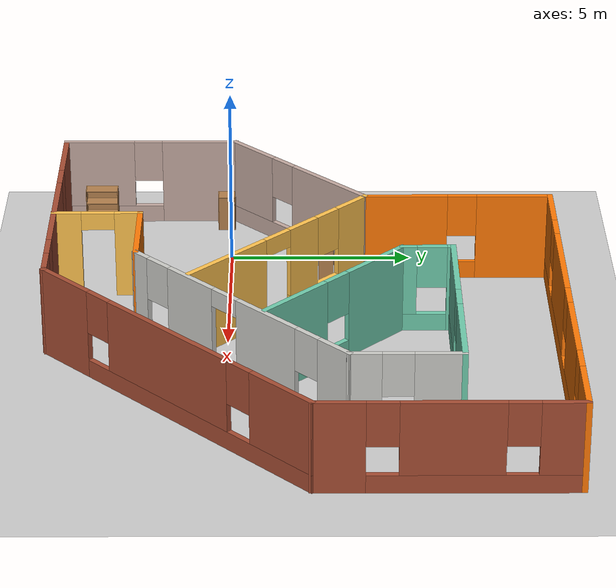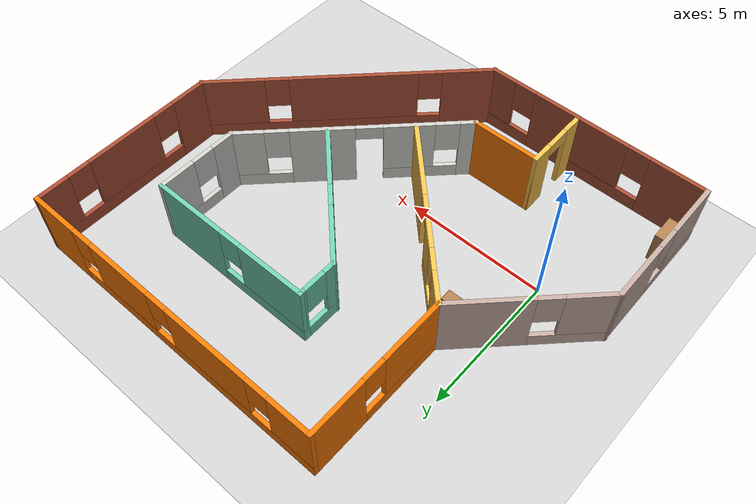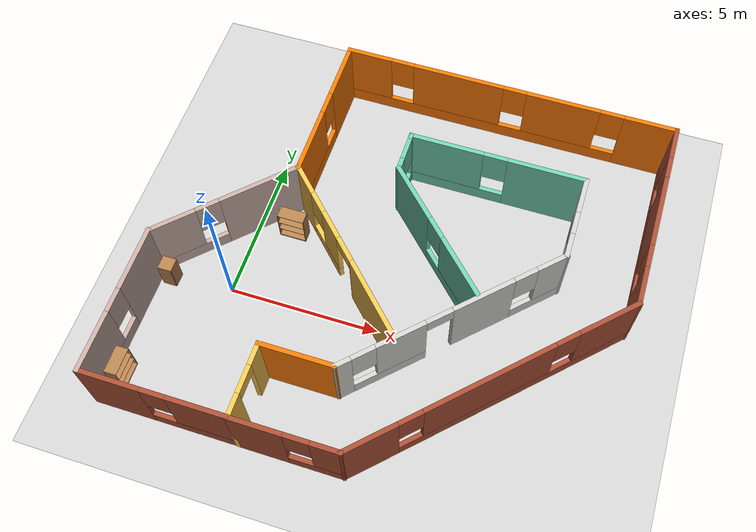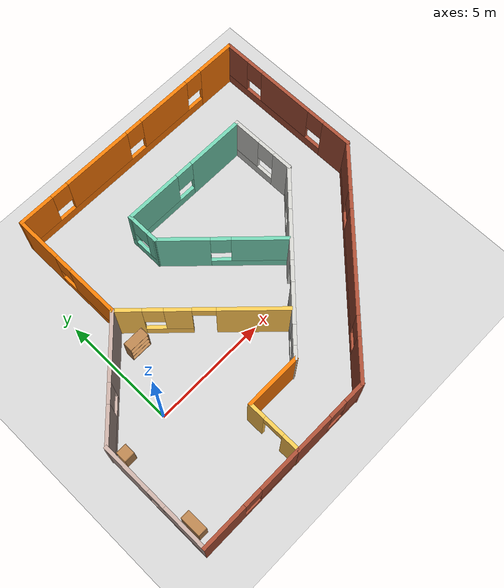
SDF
<sdf version="1.6">
 <world name="default">
  <light name="sun" type="directional">
   <pose>0 0 10 0 -0 0</pose>
   <diffuse>0.8 0.8 0.8 1</diffuse>
   <specular>0.2 0.2 0.2 1</specular>
   <attenuation>
    <range>1000</range>
    <constant>0.9</constant>
    <linear>0.01</linear>
    <quadratic>0.001</quadratic>
   </attenuation>
   <direction>-0.5 0.1 -0.9</direction>
  </light>
  <model name="ground_plane">
   <static>1</static>
   <link name="link">
    <collision name="collision">
     <geometry><plane><normal>0 0 1</normal><size>100 100</size></plane></geometry>
     <surface>
      <contact><collide_bitmask>65535</collide_bitmask></contact>
      <friction><ode><mu>100</mu><mu2>50</mu2></ode></friction>
     </surface>
    </collision>
    <visual name="visual">
     <cast_shadows>0</cast_shadows>
     <geometry><plane><normal>0 0 1</normal><size>100 100</size></plane></geometry>
     <material>
      <script><uri>file://media/materials/scripts/gazebo.material</uri><name>Gazebo/Grey</name></script>
     </material>
    </visual>
   </link>
  </model>
  <gravity>0 0 -9.8</gravity>
  <magnetic_field>6e-06 2.3e-05 -4.2e-05</magnetic_field>
  <atmosphere type="adiabatic"/>
  <physics name="default_physics" default="0" type="ode">
   <max_step_size>0.001</max_step_size>
   <real_time_factor>1</real_time_factor>
   <real_time_update_rate>1000</real_time_update_rate>
  </physics>
  <scene><ambient>0.4 0.4 0.4 1</ambient><background>0.7 0.7 0.7 1</background><shadows>1</shadows></scene>
  <spherical_coordinates>
   <surface_model>EARTH_WGS84</surface_model>
   <latitude_deg>0</latitude_deg>
   <longitude_deg>0</longitude_deg>
   <elevation>0</elevation>
   <heading_deg>0</heading_deg>
  </spherical_coordinates>
  <model name="new_world">
   <pose>5.03087 1.99743 0 0 -0 0</pose>
   <link name="Wall_0">
    <pose>-2.83688 -5.59197 0 0 -0 1.5708</pose>
    <visual name="Wall_0_Visual_0">
     <pose>-0.840266 0 1.25 0 -0 0</pose>
     <geometry><box><size>0.819468 0.15 2.5</size></box></geometry>
     <material>
      <script><uri>file://media/materials/scripts/gazebo.material</uri><name>Gazebo/Grey</name></script>
      <ambient>1 0.764706 0.305882 1</ambient>
     </material>
     <meta><layer>0</layer></meta>
    </visual>
    <collision name="Wall_0_Collision_0">
     <geometry><box><size>0.819468 0.15 2.5</size></box></geometry>
     <pose>-0.840266 0 1.25 0 -0 0</pose>
    </collision>
    <visual name="Wall_0_Visual_1">
     <pose>0.859734 0 1.25 0 -0 0</pose>
     <geometry><box><size>0.780532 0.15 2.5</size></box></geometry>
     <material>
      <script><uri>file://media/materials/scripts/gazebo.material</uri><name>Gazebo/Grey</name></script>
      <ambient>1 0.764706 0.305882 1</ambient>
     </material>
     <meta><layer>0</layer></meta>
    </visual>
    <collision name="Wall_0_Collision_1">
     <geometry><box><size>0.780532 0.15 2.5</size></box></geometry>
     <pose>0.859734 0 1.25 0 -0 0</pose>
    </collision>
    <visual name="Wall_0_Visual_2">
     <pose>0.019468 0 2.25 0 -0 0</pose>
     <geometry><box><size>0.9 0.15 0.5</size></box></geometry>
     <material>
      <script><uri>file://media/materials/scripts/gazebo.material</uri><name>Gazebo/Grey</name></script>
      <ambient>1 0.764706 0.305882 1</ambient>
     </material>
     <meta><layer>0</layer></meta>
    </visual>
    <collision name="Wall_0_Collision_2">
     <geometry><box><size>0.9 0.15 0.5</size></box></geometry>
     <pose>0.019468 0 2.25 0 -0 0</pose>
    </collision>
   </link>
   <link name="Wall_1">
    <collision name="Wall_1_Collision">
     <geometry><box><size>2.5 0.15 2.5</size></box></geometry>
     <pose>0 0 1.25 0 -0 0</pose>
    </collision>
    <visual name="Wall_1_Visual">
     <pose>0 0 1.25 0 -0 0</pose>
     <geometry><box><size>2.5 0.15 2.5</size></box></geometry>
     <material>
      <script><uri>file://media/materials/scripts/gazebo.material</uri><name>Gazebo/Grey</name></script>
      <ambient>0.996078 0.47451 0.0196078 1</ambient>
     </material>
     <meta><layer>0</layer></meta>
    </visual>
    <pose>-1.66188 -4.41697 0 0 -0 0</pose>
   </link>
   <link name="Wall_10">
    <pose>-1.16188 -6.76697 0 0 -0 0</pose>
    <visual name="Wall_10_Visual_0">
     <pose>-0.891437 0 1.25 0 -0 0</pose>
     <geometry><box><size>1.71713 0.15 2.5</size></box></geometry>
     <material>
      <script><uri>file://media/materials/scripts/gazebo.material</uri><name>Gazebo/Bricks</name></script>
      <ambient>1 1 1 1</ambient>
     </material>
     <meta><layer>0</layer></meta>
    </visual>
    <collision name="Wall_10_Collision_0">
     <geometry><box><size>1.71713 0.15 2.5</size></box></geometry>
     <pose>-0.891437 0 1.25 0 -0 0</pose>
    </collision>
    <visual name="Wall_10_Visual_1">
     <pose>0.858563 0 0.25 0 -0 0</pose>
     <geometry><box><size>1.78287 0.15 0.5</size></box></geometry>
     <material>
      <script><uri>file://media/materials/scripts/gazebo.material</uri><name>Gazebo/Bricks</name></script>
      <ambient>1 1 1 1</ambient>
     </material>
     <meta><layer>0</layer></meta>
    </visual>
    <collision name="Wall_10_Collision_1">
     <geometry><box><size>1.78287 0.15 0.5</size></box></geometry>
     <pose>0.858563 0 0.25 0 -0 0</pose>
    </collision>
    <visual name="Wall_10_Visual_2">
     <pose>1.25856 0 1.5 0 -0 0</pose>
     <geometry><box><size>0.982874 0.15 2</size></box></geometry>
     <material>
      <script><uri>file://media/materials/scripts/gazebo.material</uri><name>Gazebo/Bricks</name></script>
      <ambient>1 1 1 1</ambient>
     </material>
     <meta><layer>0</layer></meta>
    </visual>
    <collision name="Wall_10_Collision_2">
     <geometry><box><size>0.982874 0.15 2</size></box></geometry>
     <pose>1.25856 0 1.5 0 -0 0</pose>
    </collision>
    <visual name="Wall_10_Visual_3">
     <pose>0.367126 0 1.9 0 -0 0</pose>
     <geometry><box><size>0.8 0.15 1.2</size></box></geometry>
     <material>
      <script><uri>file://media/materials/scripts/gazebo.material</uri><name>Gazebo/Bricks</name></script>
      <ambient>1 1 1 1</ambient>
     </material>
     <meta><layer>0</layer></meta>
    </visual>
    <collision name="Wall_10_Collision_3">
     <geometry><box><size>0.8 0.15 1.2</size></box></geometry>
     <pose>0.367126 0 1.9 0 -0 0</pose>
    </collision>
   </link>
   <link name="Wall_11">
    <pose>3.99562 -3.28447 0 0 -0 0.785398</pose>
    <visual name="Wall_11_Visual_0">
     <pose>-4.07453 0 1.25 0 -0 0</pose>
     <geometry><box><size>1.85095 0.15 2.5</size></box></geometry>
     <material>
      <script><uri>file://media/materials/scripts/gazebo.material</uri><name>Gazebo/Bricks</name></script>
      <ambient>1 1 1 1</ambient>
     </material>
     <meta><layer>0</layer></meta>
    </visual>
    <collision name="Wall_11_Collision_0">
     <geometry><box><size>1.85095 0.15 2.5</size></box></geometry>
     <pose>-4.07453 0 1.25 0 -0 0</pose>
    </collision>
    <visual name="Wall_11_Visual_1">
     <pose>0.925475 0 0.25 0 -0 0</pose>
     <geometry><box><size>8.14905 0.15 0.5</size></box></geometry>
     <material>
      <script><uri>file://media/materials/scripts/gazebo.material</uri><name>Gazebo/Bricks</name></script>
      <ambient>1 1 1 1</ambient>
     </material>
     <meta><layer>0</layer></meta>
    </visual>
    <collision name="Wall_11_Collision_1">
     <geometry><box><size>8.14905 0.15 0.5</size></box></geometry>
     <pose>0.925475 0 0.25 0 -0 0</pose>
    </collision>
    <visual name="Wall_11_Visual_2">
     <pose>-0.154489 0 1.5 0 -0 0</pose>
     <geometry><box><size>4.38912 0.15 2</size></box></geometry>
     <material>
      <script><uri>file://media/materials/scripts/gazebo.material</uri><name>Gazebo/Bricks</name></script>
      <ambient>1 1 1 1</ambient>
     </material>
     <meta><layer>0</layer></meta>
    </visual>
    <collision name="Wall_11_Collision_2">
     <geometry><box><size>4.38912 0.15 2</size></box></geometry>
     <pose>-0.154489 0 1.5 0 -0 0</pose>
    </collision>
    <visual name="Wall_11_Visual_3">
     <pose>3.92004 0 1.5 0 -0 0</pose>
     <geometry><box><size>2.15993 0.15 2</size></box></geometry>
     <material>
      <script><uri>file://media/materials/scripts/gazebo.material</uri><name>Gazebo/Bricks</name></script>
      <ambient>1 1 1 1</ambient>
     </material>
     <meta><layer>0</layer></meta>
    </visual>
    <collision name="Wall_11_Collision_3">
     <geometry><box><size>2.15993 0.15 2</size></box></geometry>
     <pose>3.92004 0 1.5 0 -0 0</pose>
    </collision>
    <visual name="Wall_11_Visual_4">
     <pose>-2.74905 0 1.9 0 -0 0</pose>
     <geometry><box><size>0.8 0.15 1.2</size></box></geometry>
     <material>
      <script><uri>file://media/materials/scripts/gazebo.material</uri><name>Gazebo/Bricks</name></script>
      <ambient>1 1 1 1</ambient>
     </material>
     <meta><layer>0</layer></meta>
    </visual>
    <collision name="Wall_11_Collision_4">
     <geometry><box><size>0.8 0.15 1.2</size></box></geometry>
     <pose>-2.74905 0 1.9 0 -0 0</pose>
    </collision>
    <visual name="Wall_11_Visual_5">
     <pose>2.44007 0 1.9 0 -0 0</pose>
     <geometry><box><size>0.8 0.15 1.2</size></box></geometry>
     <material>
      <script><uri>file://media/materials/scripts/gazebo.material</uri><name>Gazebo/Bricks</name></script>
      <ambient>1 1 1 1</ambient>
     </material>
     <meta><layer>0</layer></meta>
    </visual>
    <collision name="Wall_11_Collision_5">
     <geometry><box><size>0.8 0.15 1.2</size></box></geometry>
     <pose>2.44007 0 1.9 0 -0 0</pose>
    </collision>
   </link>
   <link name="Wall_17">
    <pose>7.47812 3.49803 0 0 -0 1.5708</pose>
    <visual name="Wall_17_Visual_0">
     <pose>-2.68969 0 1.25 0 -0 0</pose>
     <geometry><box><size>1.37062 0.15 2.5</size></box></geometry>
     <material>
      <script><uri>file://media/materials/scripts/gazebo.material</uri><name>Gazebo/Bricks</name></script>
      <ambient>1 1 1 1</ambient>
     </material>
     <meta><layer>0</layer></meta>
    </visual>
    <collision name="Wall_17_Collision_0">
     <geometry><box><size>1.37062 0.15 2.5</size></box></geometry>
     <pose>-2.68969 0 1.25 0 -0 0</pose>
    </collision>
    <visual name="Wall_17_Visual_1">
     <pose>0.685309 0 0.25 0 -0 0</pose>
     <geometry><box><size>5.37938 0.15 0.5</size></box></geometry>
     <material>
      <script><uri>file://media/materials/scripts/gazebo.material</uri><name>Gazebo/Bricks</name></script>
      <ambient>1 1 1 1</ambient>
     </material>
     <meta><layer>0</layer></meta>
    </visual>
    <collision name="Wall_17_Collision_1">
     <geometry><box><size>5.37938 0.15 0.5</size></box></geometry>
     <pose>0.685309 0 0.25 0 -0 0</pose>
    </collision>
    <visual name="Wall_17_Visual_2">
     <pose>0.086671 0 1.5 0 -0 0</pose>
     <geometry><box><size>2.5821 0.15 2</size></box></geometry>
     <material>
      <script><uri>file://media/materials/scripts/gazebo.material</uri><name>Gazebo/Bricks</name></script>
      <ambient>1 1 1 1</ambient>
     </material>
     <meta><layer>0</layer></meta>
    </visual>
    <collision name="Wall_17_Collision_2">
     <geometry><box><size>2.5821 0.15 2</size></box></geometry>
     <pose>0.086671 0 1.5 0 -0 0</pose>
    </collision>
    <visual name="Wall_17_Visual_3">
     <pose>2.77636 0 1.5 0 -0 0</pose>
     <geometry><box><size>1.19728 0.15 2</size></box></geometry>
     <material>
      <script><uri>file://media/materials/scripts/gazebo.material</uri><name>Gazebo/Bricks</name></script>
      <ambient>1 1 1 1</ambient>
     </material>
     <meta><layer>0</layer></meta>
    </visual>
    <collision name="Wall_17_Collision_3">
     <geometry><box><size>1.19728 0.15 2</size></box></geometry>
     <pose>2.77636 0 1.5 0 -0 0</pose>
    </collision>
    <visual name="Wall_17_Visual_4">
     <pose>-1.60438 0 1.9 0 -0 0</pose>
     <geometry><box><size>0.8 0.15 1.2</size></box></geometry>
     <material>
      <script><uri>file://media/materials/scripts/gazebo.material</uri><name>Gazebo/Bricks</name></script>
      <ambient>1 1 1 1</ambient>
     </material>
     <meta><layer>0</layer></meta>
    </visual>
    <collision name="Wall_17_Collision_4">
     <geometry><box><size>0.8 0.15 1.2</size></box></geometry>
     <pose>-1.60438 0 1.9 0 -0 0</pose>
    </collision>
    <visual name="Wall_17_Visual_5">
     <pose>1.77772 0 1.9 0 -0 0</pose>
     <geometry><box><size>0.8 0.15 1.2</size></box></geometry>
     <material>
      <script><uri>file://media/materials/scripts/gazebo.material</uri><name>Gazebo/Bricks</name></script>
      <ambient>1 1 1 1</ambient>
     </material>
     <meta><layer>0</layer></meta>
    </visual>
    <collision name="Wall_17_Collision_5">
     <geometry><box><size>0.8 0.15 1.2</size></box></geometry>
     <pose>1.77772 0 1.9 0 -0 0</pose>
    </collision>
   </link>
   <link name="Wall_18">
    <pose>1.80312 6.79803 0 0 -0 3.14159</pose>
    <visual name="Wall_18_Visual_0">
     <pose>-4.8391 0 1.25 0 -0 0</pose>
     <geometry><box><size>1.8218 0.15 2.5</size></box></geometry>
     <material>
      <script><uri>file://media/materials/scripts/gazebo.material</uri><name>Gazebo/Grey</name></script>
      <ambient>0.996078 0.47451 0.0196078 1</ambient>
     </material>
     <meta><layer>0</layer></meta>
    </visual>
    <collision name="Wall_18_Collision_0">
     <geometry><box><size>1.8218 0.15 2.5</size></box></geometry>
     <pose>-4.8391 0 1.25 0 -0 0</pose>
    </collision>
    <visual name="Wall_18_Visual_1">
     <pose>0.910901 0 0.25 0 -0 0</pose>
     <geometry><box><size>9.6782 0.15 0.5</size></box></geometry>
     <material>
      <script><uri>file://media/materials/scripts/gazebo.material</uri><name>Gazebo/Grey</name></script>
      <ambient>0.996078 0.47451 0.0196078 1</ambient>
     </material>
     <meta><layer>0</layer></meta>
    </visual>
    <collision name="Wall_18_Collision_1">
     <geometry><box><size>9.6782 0.15 0.5</size></box></geometry>
     <pose>0.910901 0 0.25 0 -0 0</pose>
    </collision>
    <visual name="Wall_18_Visual_2">
     <pose>-1.86905 0 1.5 0 -0 0</pose>
     <geometry><box><size>2.51829 0.15 2</size></box></geometry>
     <material>
      <script><uri>file://media/materials/scripts/gazebo.material</uri><name>Gazebo/Grey</name></script>
      <ambient>0.996078 0.47451 0.0196078 1</ambient>
     </material>
     <meta><layer>0</layer></meta>
    </visual>
    <collision name="Wall_18_Collision_2">
     <geometry><box><size>2.51829 0.15 2</size></box></geometry>
     <pose>-1.86905 0 1.5 0 -0 0</pose>
    </collision>
    <visual name="Wall_18_Visual_3">
     <pose>1.7683 0 1.5 0 -0 0</pose>
     <geometry><box><size>3.15642 0.15 2</size></box></geometry>
     <material>
      <script><uri>file://media/materials/scripts/gazebo.material</uri><name>Gazebo/Grey</name></script>
      <ambient>0.996078 0.47451 0.0196078 1</ambient>
     </material>
     <meta><layer>0</layer></meta>
    </visual>
    <collision name="Wall_18_Collision_3">
     <geometry><box><size>3.15642 0.15 2</size></box></geometry>
     <pose>1.7683 0 1.5 0 -0 0</pose>
    </collision>
    <visual name="Wall_18_Visual_4">
     <pose>4.94826 0 1.5 0 -0 0</pose>
     <geometry><box><size>1.60349 0.15 2</size></box></geometry>
     <material>
      <script><uri>file://media/materials/scripts/gazebo.material</uri><name>Gazebo/Grey</name></script>
      <ambient>0.996078 0.47451 0.0196078 1</ambient>
     </material>
     <meta><layer>0</layer></meta>
    </visual>
    <collision name="Wall_18_Collision_4">
     <geometry><box><size>1.60349 0.15 2</size></box></geometry>
     <pose>4.94826 0 1.5 0 -0 0</pose>
    </collision>
    <visual name="Wall_18_Visual_5">
     <pose>-3.5282 0 1.9 0 -0 0</pose>
     <geometry><box><size>0.8 0.15 1.2</size></box></geometry>
     <material>
      <script><uri>file://media/materials/scripts/gazebo.material</uri><name>Gazebo/Grey</name></script>
      <ambient>0.996078 0.47451 0.0196078 1</ambient>
     </material>
     <meta><layer>0</layer></meta>
    </visual>
    <collision name="Wall_18_Collision_5">
     <geometry><box><size>0.8 0.15 1.2</size></box></geometry>
     <pose>-3.5282 0 1.9 0 -0 0</pose>
    </collision>
    <visual name="Wall_18_Visual_6">
     <pose>-0.209908 0 1.9 0 -0 0</pose>
     <geometry><box><size>0.8 0.15 1.2</size></box></geometry>
     <material>
      <script><uri>file://media/materials/scripts/gazebo.material</uri><name>Gazebo/Grey</name></script>
      <ambient>0.996078 0.47451 0.0196078 1</ambient>
     </material>
     <meta><layer>0</layer></meta>
    </visual>
    <collision name="Wall_18_Collision_6">
     <geometry><box><size>0.8 0.15 1.2</size></box></geometry>
     <pose>-0.209908 0 1.9 0 -0 0</pose>
    </collision>
    <visual name="Wall_18_Visual_7">
     <pose>3.74651 0 1.9 0 -0 0</pose>
     <geometry><box><size>0.8 0.15 1.2</size></box></geometry>
     <material>
      <script><uri>file://media/materials/scripts/gazebo.material</uri><name>Gazebo/Grey</name></script>
      <ambient>0.996078 0.47451 0.0196078 1</ambient>
     </material>
     <meta><layer>0</layer></meta>
    </visual>
    <collision name="Wall_18_Collision_7">
     <geometry><box><size>0.8 0.15 1.2</size></box></geometry>
     <pose>3.74651 0 1.9 0 -0 0</pose>
    </collision>
   </link>
   <link name="Wall_19">
    <pose>-3.87188 4.24803 0 0 0 -1.5708</pose>
    <visual name="Wall_19_Visual_0">
     <pose>-1.57967 0 1.25 0 -0 0</pose>
     <geometry><box><size>2.09066 0.15 2.5</size></box></geometry>
     <material>
      <script><uri>file://media/materials/scripts/gazebo.material</uri><name>Gazebo/Grey</name></script>
      <ambient>0.996078 0.47451 0.0196078 1</ambient>
     </material>
     <meta><layer>0</layer></meta>
    </visual>
    <collision name="Wall_19_Collision_0">
     <geometry><box><size>2.09066 0.15 2.5</size></box></geometry>
     <pose>-1.57967 0 1.25 0 -0 0</pose>
    </collision>
    <visual name="Wall_19_Visual_1">
     <pose>1.04533 0 0.25 0 -0 0</pose>
     <geometry><box><size>3.15934 0.15 0.5</size></box></geometry>
     <material>
      <script><uri>file://media/materials/scripts/gazebo.material</uri><name>Gazebo/Grey</name></script>
      <ambient>0.996078 0.47451 0.0196078 1</ambient>
     </material>
     <meta><layer>0</layer></meta>
    </visual>
    <collision name="Wall_19_Collision_1">
     <geometry><box><size>3.15934 0.15 0.5</size></box></geometry>
     <pose>1.04533 0 0.25 0 -0 0</pose>
    </collision>
    <visual name="Wall_19_Visual_2">
     <pose>1.44533 0 1.5 0 -0 0</pose>
     <geometry><box><size>2.35934 0.15 2</size></box></geometry>
     <material>
      <script><uri>file://media/materials/scripts/gazebo.material</uri><name>Gazebo/Grey</name></script>
      <ambient>0.996078 0.47451 0.0196078 1</ambient>
     </material>
     <meta><layer>0</layer></meta>
    </visual>
    <collision name="Wall_19_Collision_2">
     <geometry><box><size>2.35934 0.15 2</size></box></geometry>
     <pose>1.44533 0 1.5 0 -0 0</pose>
    </collision>
    <visual name="Wall_19_Visual_3">
     <pose>-0.134337 0 1.9 0 -0 0</pose>
     <geometry><box><size>0.8 0.15 1.2</size></box></geometry>
     <material>
      <script><uri>file://media/materials/scripts/gazebo.material</uri><name>Gazebo/Grey</name></script>
      <ambient>0.996078 0.47451 0.0196078 1</ambient>
     </material>
     <meta><layer>0</layer></meta>
    </visual>
    <collision name="Wall_19_Collision_3">
     <geometry><box><size>0.8 0.15 1.2</size></box></geometry>
     <pose>-0.134337 0 1.9 0 -0 0</pose>
    </collision>
   </link>
   <link name="Wall_2">
    <pose>2.28852 -1.64157 0 0 -0 0.785398</pose>
    <visual name="Wall_2_Visual_0">
     <pose>-3.70975 0 1.25 0 -0 0</pose>
     <geometry><box><size>0.580496 0.15 2.5</size></box></geometry>
     <material>
      <script><uri>file://media/materials/scripts/gazebo.material</uri><name>Gazebo/CeilingTiled</name></script>
      <ambient>1 1 1 1</ambient>
     </material>
     <meta><layer>0</layer></meta>
    </visual>
    <collision name="Wall_2_Collision_0">
     <geometry><box><size>0.580496 0.15 2.5</size></box></geometry>
     <pose>-3.70975 0 1.25 0 -0 0</pose>
    </collision>
    <visual name="Wall_2_Visual_1">
     <pose>1.02143 0 1.25 0 -0 0</pose>
     <geometry><box><size>2.12811 0.15 2.5</size></box></geometry>
     <material>
      <script><uri>file://media/materials/scripts/gazebo.material</uri><name>Gazebo/CeilingTiled</name></script>
      <ambient>1 1 1 1</ambient>
     </material>
     <meta><layer>0</layer></meta>
    </visual>
    <collision name="Wall_2_Collision_1">
     <geometry><box><size>2.12811 0.15 2.5</size></box></geometry>
     <pose>1.02143 0 1.25 0 -0 0</pose>
    </collision>
    <visual name="Wall_2_Visual_2">
     <pose>-2.18106 0 0.25 0 -0 0</pose>
     <geometry><box><size>2.47688 0.15 0.5</size></box></geometry>
     <material>
      <script><uri>file://media/materials/scripts/gazebo.material</uri><name>Gazebo/CeilingTiled</name></script>
      <ambient>1 1 1 1</ambient>
     </material>
     <meta><layer>0</layer></meta>
    </visual>
    <collision name="Wall_2_Collision_2">
     <geometry><box><size>2.47688 0.15 0.5</size></box></geometry>
     <pose>-2.18106 0 0.25 0 -0 0</pose>
    </collision>
    <visual name="Wall_2_Visual_3">
     <pose>3.04274 0 0.25 0 -0 0</pose>
     <geometry><box><size>1.91452 0.15 0.5</size></box></geometry>
     <material>
      <script><uri>file://media/materials/scripts/gazebo.material</uri><name>Gazebo/CeilingTiled</name></script>
      <ambient>1 1 1 1</ambient>
     </material>
     <meta><layer>0</layer></meta>
    </visual>
    <collision name="Wall_2_Collision_3">
     <geometry><box><size>1.91452 0.15 0.5</size></box></geometry>
     <pose>3.04274 0 0.25 0 -0 0</pose>
    </collision>
    <visual name="Wall_2_Visual_4">
     <pose>-1.78106 0 1.5 0 -0 0</pose>
     <geometry><box><size>1.67688 0.15 2</size></box></geometry>
     <material>
      <script><uri>file://media/materials/scripts/gazebo.material</uri><name>Gazebo/CeilingTiled</name></script>
      <ambient>1 1 1 1</ambient>
     </material>
     <meta><layer>0</layer></meta>
    </visual>
    <collision name="Wall_2_Collision_4">
     <geometry><box><size>1.67688 0.15 2</size></box></geometry>
     <pose>-1.78106 0 1.5 0 -0 0</pose>
    </collision>
    <visual name="Wall_2_Visual_5">
     <pose>-1.78106 0 1.5 0 -0 0</pose>
     <geometry><box><size>1.67688 0.15 2</size></box></geometry>
     <material>
      <script><uri>file://media/materials/scripts/gazebo.material</uri><name>Gazebo/CeilingTiled</name></script>
      <ambient>1 1 1 1</ambient>
     </material>
     <meta><layer>0</layer></meta>
    </visual>
    <collision name="Wall_2_Collision_5">
     <geometry><box><size>1.67688 0.15 2</size></box></geometry>
     <pose>-1.78106 0 1.5 0 -0 0</pose>
    </collision>
    <visual name="Wall_2_Visual_6">
     <pose>3.44274 0 1.5 0 -0 0</pose>
     <geometry><box><size>1.11452 0.15 2</size></box></geometry>
     <material>
      <script><uri>file://media/materials/scripts/gazebo.material</uri><name>Gazebo/CeilingTiled</name></script>
      <ambient>1 1 1 1</ambient>
     </material>
     <meta><layer>0</layer></meta>
    </visual>
    <collision name="Wall_2_Collision_6">
     <geometry><box><size>1.11452 0.15 2</size></box></geometry>
     <pose>3.44274 0 1.5 0 -0 0</pose>
    </collision>
    <visual name="Wall_2_Visual_7">
     <pose>-3.0195 0 1.9 0 -0 0</pose>
     <geometry><box><size>0.8 0.15 1.2</size></box></geometry>
     <material>
      <script><uri>file://media/materials/scripts/gazebo.material</uri><name>Gazebo/CeilingTiled</name></script>
      <ambient>1 1 1 1</ambient>
     </material>
     <meta><layer>0</layer></meta>
    </visual>
    <collision name="Wall_2_Collision_7">
     <geometry><box><size>0.8 0.15 1.2</size></box></geometry>
     <pose>-3.0195 0 1.9 0 -0 0</pose>
    </collision>
    <visual name="Wall_2_Visual_8">
     <pose>2.48548 0 1.9 0 -0 0</pose>
     <geometry><box><size>0.8 0.15 1.2</size></box></geometry>
     <material>
      <script><uri>file://media/materials/scripts/gazebo.material</uri><name>Gazebo/CeilingTiled</name></script>
      <ambient>1 1 1 1</ambient>
     </material>
     <meta><layer>0</layer></meta>
    </visual>
    <collision name="Wall_2_Collision_8">
     <geometry><box><size>0.8 0.15 1.2</size></box></geometry>
     <pose>2.48548 0 1.9 0 -0 0</pose>
    </collision>
    <visual name="Wall_2_Visual_9">
     <pose>-0.492627 0 2.25 0 -0 0</pose>
     <geometry><box><size>0.9 0.15 0.5</size></box></geometry>
     <material>
      <script><uri>file://media/materials/scripts/gazebo.material</uri><name>Gazebo/CeilingTiled</name></script>
      <ambient>1 1 1 1</ambient>
     </material>
     <meta><layer>0</layer></meta>
    </visual>
    <collision name="Wall_2_Collision_9">
     <geometry><box><size>0.9 0.15 0.5</size></box></geometry>
     <pose>-0.492627 0 2.25 0 -0 0</pose>
    </collision>
    <visual name="Wall_2_Visual_10">
     <pose>-0.492627 0 2.25 0 -0 0</pose>
     <geometry><box><size>0.9 0.15 0.5</size></box></geometry>
     <material>
      <script><uri>file://media/materials/scripts/gazebo.material</uri><name>Gazebo/CeilingTiled</name></script>
      <ambient>1 1 1 1</ambient>
     </material>
     <meta><layer>0</layer></meta>
    </visual>
    <collision name="Wall_2_Collision_10">
     <geometry><box><size>0.9 0.15 0.5</size></box></geometry>
     <pose>-0.492627 0 2.25 0 -0 0</pose>
    </collision>
   </link>
   <link name="Wall_22">
    <pose>-1.53843 -0.63542 0 0 0 -0.785398</pose>
    <visual name="Wall_22_Visual_0">
     <pose>-2.78947 0 1.25 0 -0 0</pose>
     <geometry><box><size>1.17106 0.15 2.5</size></box></geometry>
     <material>
      <script><uri>file://media/materials/scripts/gazebo.material</uri><name>Gazebo/Grey</name></script>
      <ambient>1 0.764706 0.305882 1</ambient>
     </material>
     <meta><layer>0</layer></meta>
    </visual>
    <collision name="Wall_22_Collision_0">
     <geometry><box><size>1.17106 0.15 2.5</size></box></geometry>
     <pose>-2.78947 0 1.25 0 -0 0</pose>
    </collision>
    <visual name="Wall_22_Visual_1">
     <pose>1.95811 0 1.25 0 -0 0</pose>
     <geometry><box><size>2.83378 0.15 2.5</size></box></geometry>
     <material>
      <script><uri>file://media/materials/scripts/gazebo.material</uri><name>Gazebo/Grey</name></script>
      <ambient>1 0.764706 0.305882 1</ambient>
     </material>
     <meta><layer>0</layer></meta>
    </visual>
    <collision name="Wall_22_Collision_1">
     <geometry><box><size>2.83378 0.15 2.5</size></box></geometry>
     <pose>1.95811 0 1.25 0 -0 0</pose>
    </collision>
    <visual name="Wall_22_Visual_2">
     <pose>-1.28136 0 0.25 0 -0 0</pose>
     <geometry><box><size>1.84516 0.15 0.5</size></box></geometry>
     <material>
      <script><uri>file://media/materials/scripts/gazebo.material</uri><name>Gazebo/Grey</name></script>
      <ambient>1 0.764706 0.305882 1</ambient>
     </material>
     <meta><layer>0</layer></meta>
    </visual>
    <collision name="Wall_22_Collision_2">
     <geometry><box><size>1.84516 0.15 0.5</size></box></geometry>
     <pose>-1.28136 0 0.25 0 -0 0</pose>
    </collision>
    <visual name="Wall_22_Visual_3">
     <pose>-0.881363 0 1.5 0 -0 0</pose>
     <geometry><box><size>1.04516 0.15 2</size></box></geometry>
     <material>
      <script><uri>file://media/materials/scripts/gazebo.material</uri><name>Gazebo/Grey</name></script>
      <ambient>1 0.764706 0.305882 1</ambient>
     </material>
     <meta><layer>0</layer></meta>
    </visual>
    <collision name="Wall_22_Collision_3">
     <geometry><box><size>1.04516 0.15 2</size></box></geometry>
     <pose>-0.881363 0 1.5 0 -0 0</pose>
    </collision>
    <visual name="Wall_22_Visual_4">
     <pose>-1.80394 0 1.9 0 -0 0</pose>
     <geometry><box><size>0.8 0.15 1.2</size></box></geometry>
     <material>
      <script><uri>file://media/materials/scripts/gazebo.material</uri><name>Gazebo/Grey</name></script>
      <ambient>1 0.764706 0.305882 1</ambient>
     </material>
     <meta><layer>0</layer></meta>
    </visual>
    <collision name="Wall_22_Collision_4">
     <geometry><box><size>0.8 0.15 1.2</size></box></geometry>
     <pose>-1.80394 0 1.9 0 -0 0</pose>
    </collision>
    <visual name="Wall_22_Visual_5">
     <pose>0.091216 0 2.25 0 -0 0</pose>
     <geometry><box><size>0.9 0.15 0.5</size></box></geometry>
     <material>
      <script><uri>file://media/materials/scripts/gazebo.material</uri><name>Gazebo/Grey</name></script>
      <ambient>1 0.764706 0.305882 1</ambient>
     </material>
     <meta><layer>0</layer></meta>
    </visual>
    <collision name="Wall_22_Collision_5">
     <geometry><box><size>0.9 0.15 0.5</size></box></geometry>
     <pose>0.091216 0 2.25 0 -0 0</pose>
    </collision>
   </link>
   <link name="Wall_24">
    <pose>-5.675 -0.10509 0 0 0 -2.35619</pose>
    <visual name="Wall_24_Visual_0">
     <pose>-1.21466 0 1.25 0 -0 0</pose>
     <geometry><box><size>2.82068 0.15 2.5</size></box></geometry>
     <material>
      <script><uri>file://media/materials/scripts/gazebo.material</uri><name>Gazebo/Grey</name></script>
      <ambient>0.760784 0.662745 0.627451 1</ambient>
     </material>
     <meta><layer>0</layer></meta>
    </visual>
    <collision name="Wall_24_Collision_0">
     <geometry><box><size>2.82068 0.15 2.5</size></box></geometry>
     <pose>-1.21466 0 1.25 0 -0 0</pose>
    </collision>
    <visual name="Wall_24_Visual_1">
     <pose>1.41034 0 0.25 0 -0 0</pose>
     <geometry><box><size>2.42932 0.15 0.5</size></box></geometry>
     <material>
      <script><uri>file://media/materials/scripts/gazebo.material</uri><name>Gazebo/Grey</name></script>
      <ambient>0.760784 0.662745 0.627451 1</ambient>
     </material>
     <meta><layer>0</layer></meta>
    </visual>
    <collision name="Wall_24_Collision_1">
     <geometry><box><size>2.42932 0.15 0.5</size></box></geometry>
     <pose>1.41034 0 0.25 0 -0 0</pose>
    </collision>
    <visual name="Wall_24_Visual_2">
     <pose>1.81034 0 1.5 0 -0 0</pose>
     <geometry><box><size>1.62932 0.15 2</size></box></geometry>
     <material>
      <script><uri>file://media/materials/scripts/gazebo.material</uri><name>Gazebo/Grey</name></script>
      <ambient>0.760784 0.662745 0.627451 1</ambient>
     </material>
     <meta><layer>0</layer></meta>
    </visual>
    <collision name="Wall_24_Collision_2">
     <geometry><box><size>1.62932 0.15 2</size></box></geometry>
     <pose>1.81034 0 1.5 0 -0 0</pose>
    </collision>
    <visual name="Wall_24_Visual_3">
     <pose>0.595677 0 1.9 0 -0 0</pose>
     <geometry><box><size>0.8 0.15 1.2</size></box></geometry>
     <material>
      <script><uri>file://media/materials/scripts/gazebo.material</uri><name>Gazebo/Grey</name></script>
      <ambient>0.760784 0.662745 0.627451 1</ambient>
     </material>
     <meta><layer>0</layer></meta>
    </visual>
    <collision name="Wall_24_Collision_3">
     <geometry><box><size>0.8 0.15 1.2</size></box></geometry>
     <pose>0.595677 0 1.9 0 -0 0</pose>
    </collision>
   </link>
   <link name="Wall_25">
    <pose>-7.47812 -4.33321 0 0 0 -1.5708</pose>
    <visual name="Wall_25_Visual_0">
     <pose>-1.40468 0 1.25 0 -0 0</pose>
     <geometry><box><size>2.19065 0.15 2.5</size></box></geometry>
     <material>
      <script><uri>file://media/materials/scripts/gazebo.material</uri><name>Gazebo/Grey</name></script>
      <ambient>0.760784 0.662745 0.627451 1</ambient>
     </material>
     <meta><layer>0</layer></meta>
    </visual>
    <collision name="Wall_25_Collision_0">
     <geometry><box><size>2.19065 0.15 2.5</size></box></geometry>
     <pose>-1.40468 0 1.25 0 -0 0</pose>
    </collision>
    <visual name="Wall_25_Visual_1">
     <pose>1.09532 0 0.25 0 -0 0</pose>
     <geometry><box><size>2.80935 0.15 0.5</size></box></geometry>
     <material>
      <script><uri>file://media/materials/scripts/gazebo.material</uri><name>Gazebo/Grey</name></script>
      <ambient>0.760784 0.662745 0.627451 1</ambient>
     </material>
     <meta><layer>0</layer></meta>
    </visual>
    <collision name="Wall_25_Collision_1">
     <geometry><box><size>2.80935 0.15 0.5</size></box></geometry>
     <pose>1.09532 0 0.25 0 -0 0</pose>
    </collision>
    <visual name="Wall_25_Visual_2">
     <pose>1.49532 0 1.5 0 -0 0</pose>
     <geometry><box><size>2.00935 0.15 2</size></box></geometry>
     <material>
      <script><uri>file://media/materials/scripts/gazebo.material</uri><name>Gazebo/Grey</name></script>
      <ambient>0.760784 0.662745 0.627451 1</ambient>
     </material>
     <meta><layer>0</layer></meta>
    </visual>
    <collision name="Wall_25_Collision_2">
     <geometry><box><size>2.00935 0.15 2</size></box></geometry>
     <pose>1.49532 0 1.5 0 -0 0</pose>
    </collision>
    <visual name="Wall_25_Visual_3">
     <pose>0.090648 0 1.9 0 -0 0</pose>
     <geometry><box><size>0.8 0.15 1.2</size></box></geometry>
     <material>
      <script><uri>file://media/materials/scripts/gazebo.material</uri><name>Gazebo/Grey</name></script>
      <ambient>0.760784 0.662745 0.627451 1</ambient>
     </material>
     <meta><layer>0</layer></meta>
    </visual>
    <collision name="Wall_25_Collision_3">
     <geometry><box><size>0.8 0.15 1.2</size></box></geometry>
     <pose>0.090648 0 1.9 0 -0 0</pose>
    </collision>
   </link>
   <link name="Wall_26">
    <pose>-5.17812 -6.75821 0 0 -0 0</pose>
    <visual name="Wall_26_Visual_0">
     <pose>-1.36547 0 1.25 0 -0 0</pose>
     <geometry><box><size>2.01907 0.15 2.5</size></box></geometry>
     <material>
      <script><uri>file://media/materials/scripts/gazebo.material</uri><name>Gazebo/Bricks</name></script>
      <ambient>1 1 1 1</ambient>
     </material>
     <meta><layer>0</layer></meta>
    </visual>
    <collision name="Wall_26_Collision_0">
     <geometry><box><size>2.01907 0.15 2.5</size></box></geometry>
     <pose>-1.36547 0 1.25 0 -0 0</pose>
    </collision>
    <visual name="Wall_26_Visual_1">
     <pose>1.00953 0 0.25 0 -0 0</pose>
     <geometry><box><size>2.73093 0.15 0.5</size></box></geometry>
     <material>
      <script><uri>file://media/materials/scripts/gazebo.material</uri><name>Gazebo/Bricks</name></script>
      <ambient>1 1 1 1</ambient>
     </material>
     <meta><layer>0</layer></meta>
    </visual>
    <collision name="Wall_26_Collision_1">
     <geometry><box><size>2.73093 0.15 0.5</size></box></geometry>
     <pose>1.00953 0 0.25 0 -0 0</pose>
    </collision>
    <visual name="Wall_26_Visual_2">
     <pose>1.40953 0 1.5 0 -0 0</pose>
     <geometry><box><size>1.93093 0.15 2</size></box></geometry>
     <material>
      <script><uri>file://media/materials/scripts/gazebo.material</uri><name>Gazebo/Bricks</name></script>
      <ambient>1 1 1 1</ambient>
     </material>
     <meta><layer>0</layer></meta>
    </visual>
    <collision name="Wall_26_Collision_2">
     <geometry><box><size>1.93093 0.15 2</size></box></geometry>
     <pose>1.40953 0 1.5 0 -0 0</pose>
    </collision>
    <visual name="Wall_26_Visual_3">
     <pose>0.044068 0 1.9 0 -0 0</pose>
     <geometry><box><size>0.8 0.15 1.2</size></box></geometry>
     <material>
      <script><uri>file://media/materials/scripts/gazebo.material</uri><name>Gazebo/Bricks</name></script>
      <ambient>1 1 1 1</ambient>
     </material>
     <meta><layer>0</layer></meta>
    </visual>
    <collision name="Wall_26_Collision_3">
     <geometry><box><size>0.8 0.15 1.2</size></box></geometry>
     <pose>0.044068 0 1.9 0 -0 0</pose>
    </collision>
   </link>
   <link name="Wall_4">
    <pose>5.06391 2.55882 0 0 -0 1.5708</pose>
    <visual name="Wall_4_Visual_0">
     <pose>-1.05924 0 1.25 0 -0 0</pose>
     <geometry><box><size>0.881526 0.15 2.5</size></box></geometry>
     <material>
      <script><uri>file://media/materials/scripts/gazebo.material</uri><name>Gazebo/CeilingTiled</name></script>
      <ambient>1 1 1 1</ambient>
     </material>
     <meta><layer>0</layer></meta>
    </visual>
    <collision name="Wall_4_Collision_0">
     <geometry><box><size>0.881526 0.15 2.5</size></box></geometry>
     <pose>-1.05924 0 1.25 0 -0 0</pose>
    </collision>
    <visual name="Wall_4_Visual_1">
     <pose>0.440763 0 0.25 0 -0 0</pose>
     <geometry><box><size>2.11847 0.15 0.5</size></box></geometry>
     <material>
      <script><uri>file://media/materials/scripts/gazebo.material</uri><name>Gazebo/CeilingTiled</name></script>
      <ambient>1 1 1 1</ambient>
     </material>
     <meta><layer>0</layer></meta>
    </visual>
    <collision name="Wall_4_Collision_1">
     <geometry><box><size>2.11847 0.15 0.5</size></box></geometry>
     <pose>0.440763 0 0.25 0 -0 0</pose>
    </collision>
    <visual name="Wall_4_Visual_2">
     <pose>0.840763 0 1.5 0 -0 0</pose>
     <geometry><box><size>1.31847 0.15 2</size></box></geometry>
     <material>
      <script><uri>file://media/materials/scripts/gazebo.material</uri><name>Gazebo/CeilingTiled</name></script>
      <ambient>1 1 1 1</ambient>
     </material>
     <meta><layer>0</layer></meta>
    </visual>
    <collision name="Wall_4_Collision_2">
     <geometry><box><size>1.31847 0.15 2</size></box></geometry>
     <pose>0.840763 0 1.5 0 -0 0</pose>
    </collision>
    <visual name="Wall_4_Visual_3">
     <pose>-0.218474 0 1.9 0 -0 0</pose>
     <geometry><box><size>0.8 0.15 1.2</size></box></geometry>
     <material>
      <script><uri>file://media/materials/scripts/gazebo.material</uri><name>Gazebo/CeilingTiled</name></script>
      <ambient>1 1 1 1</ambient>
     </material>
     <meta><layer>0</layer></meta>
    </visual>
    <collision name="Wall_4_Collision_3">
     <geometry><box><size>0.8 0.15 1.2</size></box></geometry>
     <pose>-0.218474 0 1.9 0 -0 0</pose>
    </collision>
   </link>
   <link name="Wall_5">
    <pose>2.13891 3.98382 0 0 -0 3.14159</pose>
    <visual name="Wall_5_Visual_0">
     <pose>-1.66897 0 1.25 0 -0 0</pose>
     <geometry><box><size>2.66207 0.15 2.5</size></box></geometry>
     <material>
      <script><uri>file://media/materials/scripts/gazebo.material</uri><name>Gazebo/Grey</name></script>
      <ambient>0.435294 0.796078 0.67451 1</ambient>
     </material>
     <meta><layer>0</layer></meta>
    </visual>
    <collision name="Wall_5_Collision_0">
     <geometry><box><size>2.66207 0.15 2.5</size></box></geometry>
     <pose>-1.66897 0 1.25 0 -0 0</pose>
    </collision>
    <visual name="Wall_5_Visual_1">
     <pose>1.33103 0 0.25 0 -0 0</pose>
     <geometry><box><size>3.33793 0.15 0.5</size></box></geometry>
     <material>
      <script><uri>file://media/materials/scripts/gazebo.material</uri><name>Gazebo/Grey</name></script>
      <ambient>0.435294 0.796078 0.67451 1</ambient>
     </material>
     <meta><layer>0</layer></meta>
    </visual>
    <collision name="Wall_5_Collision_1">
     <geometry><box><size>3.33793 0.15 0.5</size></box></geometry>
     <pose>1.33103 0 0.25 0 -0 0</pose>
    </collision>
    <visual name="Wall_5_Visual_2">
     <pose>1.73103 0 1.5 0 -0 0</pose>
     <geometry><box><size>2.53794 0.15 2</size></box></geometry>
     <material>
      <script><uri>file://media/materials/scripts/gazebo.material</uri><name>Gazebo/Grey</name></script>
      <ambient>0.435294 0.796078 0.67451 1</ambient>
     </material>
     <meta><layer>0</layer></meta>
    </visual>
    <collision name="Wall_5_Collision_2">
     <geometry><box><size>2.53794 0.15 2</size></box></geometry>
     <pose>1.73103 0 1.5 0 -0 0</pose>
    </collision>
    <visual name="Wall_5_Visual_3">
     <pose>0.062065 0 1.9 0 -0 0</pose>
     <geometry><box><size>0.8 0.15 1.2</size></box></geometry>
     <material>
      <script><uri>file://media/materials/scripts/gazebo.material</uri><name>Gazebo/Grey</name></script>
      <ambient>0.435294 0.796078 0.67451 1</ambient>
     </material>
     <meta><layer>0</layer></meta>
    </visual>
    <collision name="Wall_5_Collision_3">
     <geometry><box><size>0.8 0.15 1.2</size></box></geometry>
     <pose>0.062065 0 1.9 0 -0 0</pose>
    </collision>
   </link>
   <link name="Wall_6">
    <pose>-0.78609 3.30882 0 0 0 -1.5708</pose>
    <visual name="Wall_6_Visual_0">
     <pose>-0.633176 0 1.25 0 -0 0</pose>
     <geometry><box><size>0.233649 0.15 2.5</size></box></geometry>
     <material>
      <script><uri>file://media/materials/scripts/gazebo.material</uri><name>Gazebo/Grey</name></script>
      <ambient>0.435294 0.796078 0.67451 1</ambient>
     </material>
     <meta><layer>0</layer></meta>
    </visual>
    <collision name="Wall_6_Collision_0">
     <geometry><box><size>0.233649 0.15 2.5</size></box></geometry>
     <pose>-0.633176 0 1.25 0 -0 0</pose>
    </collision>
    <visual name="Wall_6_Visual_1">
     <pose>0.116824 0 0.25 0 -0 0</pose>
     <geometry><box><size>1.26635 0.15 0.5</size></box></geometry>
     <material>
      <script><uri>file://media/materials/scripts/gazebo.material</uri><name>Gazebo/Grey</name></script>
      <ambient>0.435294 0.796078 0.67451 1</ambient>
     </material>
     <meta><layer>0</layer></meta>
    </visual>
    <collision name="Wall_6_Collision_1">
     <geometry><box><size>1.26635 0.15 0.5</size></box></geometry>
     <pose>0.116824 0 0.25 0 -0 0</pose>
    </collision>
    <visual name="Wall_6_Visual_2">
     <pose>0.516824 0 1.5 0 -0 0</pose>
     <geometry><box><size>0.466351 0.15 2</size></box></geometry>
     <material>
      <script><uri>file://media/materials/scripts/gazebo.material</uri><name>Gazebo/Grey</name></script>
      <ambient>0.435294 0.796078 0.67451 1</ambient>
     </material>
     <meta><layer>0</layer></meta>
    </visual>
    <collision name="Wall_6_Collision_2">
     <geometry><box><size>0.466351 0.15 2</size></box></geometry>
     <pose>0.516824 0 1.5 0 -0 0</pose>
    </collision>
    <visual name="Wall_6_Visual_3">
     <pose>-0.116351 0 1.9 0 -0 0</pose>
     <geometry><box><size>0.8 0.15 1.2</size></box></geometry>
     <material>
      <script><uri>file://media/materials/scripts/gazebo.material</uri><name>Gazebo/Grey</name></script>
      <ambient>0.435294 0.796078 0.67451 1</ambient>
     </material>
     <meta><layer>0</layer></meta>
    </visual>
    <collision name="Wall_6_Collision_3">
     <geometry><box><size>0.8 0.15 1.2</size></box></geometry>
     <pose>-0.116351 0 1.9 0 -0 0</pose>
    </collision>
   </link>
   <link name="Wall_7">
    <pose>1.01703 0.830698 0 0 0 -0.785398</pose>
    <visual name="Wall_7_Visual_0">
     <pose>-1.53617 0 1.25 0 -0 0</pose>
     <geometry><box><size>2.17766 0.15 2.5</size></box></geometry>
     <material>
      <script><uri>file://media/materials/scripts/gazebo.material</uri><name>Gazebo/Grey</name></script>
      <ambient>0.435294 0.796078 0.67451 1</ambient>
     </material>
     <meta><layer>0</layer></meta>
    </visual>
    <collision name="Wall_7_Collision_0">
     <geometry><box><size>2.17766 0.15 2.5</size></box></geometry>
     <pose>-1.53617 0 1.25 0 -0 0</pose>
    </collision>
    <visual name="Wall_7_Visual_1">
     <pose>1.08883 0 0.25 0 -0 0</pose>
     <geometry><box><size>3.07234 0.15 0.5</size></box></geometry>
     <material>
      <script><uri>file://media/materials/scripts/gazebo.material</uri><name>Gazebo/Grey</name></script>
      <ambient>0.435294 0.796078 0.67451 1</ambient>
     </material>
     <meta><layer>0</layer></meta>
    </visual>
    <collision name="Wall_7_Collision_1">
     <geometry><box><size>3.07234 0.15 0.5</size></box></geometry>
     <pose>1.08883 0 0.25 0 -0 0</pose>
    </collision>
    <visual name="Wall_7_Visual_2">
     <pose>1.48883 0 1.5 0 -0 0</pose>
     <geometry><box><size>2.27235 0.15 2</size></box></geometry>
     <material>
      <script><uri>file://media/materials/scripts/gazebo.material</uri><name>Gazebo/Grey</name></script>
      <ambient>0.435294 0.796078 0.67451 1</ambient>
     </material>
     <meta><layer>0</layer></meta>
    </visual>
    <collision name="Wall_7_Collision_2">
     <geometry><box><size>2.27235 0.15 2</size></box></geometry>
     <pose>1.48883 0 1.5 0 -0 0</pose>
    </collision>
    <visual name="Wall_7_Visual_3">
     <pose>-0.047345 0 1.9 0 -0 0</pose>
     <geometry><box><size>0.8 0.15 1.2</size></box></geometry>
     <material>
      <script><uri>file://media/materials/scripts/gazebo.material</uri><name>Gazebo/Grey</name></script>
      <ambient>0.435294 0.796078 0.67451 1</ambient>
     </material>
     <meta><layer>0</layer></meta>
    </visual>
    <collision name="Wall_7_Collision_3">
     <geometry><box><size>0.8 0.15 1.2</size></box></geometry>
     <pose>-0.047345 0 1.9 0 -0 0</pose>
    </collision>
   </link>
   <static>1</static>
  </model>
  <model name="bookshelf">
   <static>1</static>
   <link name="link">
    <inertial><mass>1</mass></inertial>
    <collision name="back">
     <pose>0 0.005 0.6 0 -0 0</pose>
     <geometry><box><size>0.9 0.01 1.2</size></box></geometry>
    </collision>
    <visual name="visual1">
     <pose>0 0.005 0.6 0 -0 0</pose>
     <geometry><box><size>0.9 0.01 1.2</size></box></geometry>
     <material>
      <script><uri>file://media/materials/scripts/gazebo.material</uri><name>Gazebo/Wood</name></script>
     </material>
    </visual>
    <collision name="left_side">
     <pose>0.45 -0.195 0.6 0 -0 0</pose>
     <geometry><box><size>0.02 0.4 1.2</size></box></geometry>
    </collision>
    <visual name="visual2">
     <pose>0.45 -0.195 0.6 0 -0 0</pose>
     <geometry><box><size>0.02 0.4 1.2</size></box></geometry>
     <material>
      <script><uri>file://media/materials/scripts/gazebo.material</uri><name>Gazebo/Wood</name></script>
     </material>
    </visual>
    <collision name="right_side">
     <pose>-0.45 -0.195 0.6 0 -0 0</pose>
     <geometry><box><size>0.02 0.4 1.2</size></box></geometry>
    </collision>
    <visual name="visual3">
     <pose>-0.45 -0.195 0.6 0 -0 0</pose>
     <geometry><box><size>0.02 0.4 1.2</size></box></geometry>
     <material>
      <script><uri>file://media/materials/scripts/gazebo.material</uri><name>Gazebo/Wood</name></script>
     </material>
    </visual>
    <collision name="bottom">
     <pose>0 -0.195 0.03 0 -0 0</pose>
     <geometry><box><size>0.88 0.4 0.06</size></box></geometry>
    </collision>
    <visual name="visual4">
     <pose>0 -0.195 0.03 0 -0 0</pose>
     <geometry><box><size>0.88 0.4 0.06</size></box></geometry>
     <material>
      <script><uri>file://media/materials/scripts/gazebo.material</uri><name>Gazebo/Wood</name></script>
     </material>
    </visual>
    <collision name="top">
     <pose>0 -0.195 1.19 0 -0 0</pose>
     <geometry><box><size>0.88 0.4 0.02</size></box></geometry>
    </collision>
    <visual name="visual5">
     <pose>0 -0.195 1.19 0 -0 0</pose>
     <geometry><box><size>0.88 0.4 0.02</size></box></geometry>
     <material>
      <script><uri>file://media/materials/scripts/gazebo.material</uri><name>Gazebo/Wood</name></script>
     </material>
    </visual>
    <collision name="low_shelf">
     <pose>0 -0.195 0.43 0 -0 0</pose>
     <geometry><box><size>0.88 0.4 0.02</size></box></geometry>
    </collision>
    <visual name="visual6">
     <pose>0 -0.195 0.43 0 -0 0</pose>
     <geometry><box><size>0.88 0.4 0.02</size></box></geometry>
     <material>
      <script><uri>file://media/materials/scripts/gazebo.material</uri><name>Gazebo/Wood</name></script>
     </material>
    </visual>
    <collision name="high_shelf">
     <pose>0 -0.195 0.8 0 -0 0</pose>
     <geometry><box><size>0.88 0.4 0.02</size></box></geometry>
    </collision>
    <visual name="visual7">
     <pose>0 -0.195 0.8 0 -0 0</pose>
     <geometry><box><size>0.88 0.4 0.02</size></box></geometry>
     <material>
      <script><uri>file://media/materials/scripts/gazebo.material</uri><name>Gazebo/Wood</name></script>
     </material>
    </visual>
   </link>
   <pose>1.20115 2.83489 0 0 -0 0</pose>
  </model>
  <model name="cabinet">
   <static>1</static>
   <link name="cabinet_bottom_plate">
    <inertial>
     <pose>0 0 -1 0 -0 0</pose>
     <inertia><ixx>2.05</ixx><ixy>0</ixy><ixz>0</ixz><iyy>2.05</iyy><iyz>0</iyz><izz>2.05</izz></inertia>
     <mass>25</mass>
    </inertial>
    <collision name="cabinet_bottom_plate_geom">
     <pose>0 0 0.01 0 -0 0</pose>
     <geometry><box><size>0.45 0.45 0.02</size></box></geometry>
    </collision>
    <visual name="cabinet_bottom_plate_geom_visual">
     <pose>0 0 0.01 0 -0 0</pose>
     <geometry><box><size>0.45 0.45 0.02</size></box></geometry>
     <material>
      <script><uri>file://media/materials/scripts/gazebo.material</uri><name>Gazebo/Wood</name></script>
     </material>
    </visual>
    <collision name="cabinet_bottom_plate_geom_cabinet_back_plate">
     <pose>0.235 0 0.51 0 -0 0</pose>
     <geometry><box><size>0.02 0.45 1.02</size></box></geometry>
    </collision>
    <visual name="cabinet_bottom_plate_geom_cabinet_back_plate_visual">
     <pose>0.235 0 0.51 0 -0 0</pose>
     <geometry><box><size>0.02 0.45 1.02</size></box></geometry>
     <material>
      <script><uri>file://media/materials/scripts/gazebo.material</uri><name>Gazebo/Wood</name></script>
     </material>
    </visual>
    <collision name="cabinet_bottom_plate_geom_cabinet_left_plate">
     <pose>0 0.235 0.51 0 -0 0</pose>
     <geometry><box><size>0.45 0.02 1.02</size></box></geometry>
    </collision>
    <visual name="cabinet_bottom_plate_geom_cabinet_left_plate_visual">
     <pose>0 0.235 0.51 0 -0 0</pose>
     <geometry><box><size>0.45 0.02 1.02</size></box></geometry>
     <material>
      <script><uri>file://media/materials/scripts/gazebo.material</uri><name>Gazebo/Wood</name></script>
     </material>
    </visual>
    <collision name="cabinet_bottom_plate_geom_cabinet_middle_plate">
     <pose>0 0 0.51 0 -0 0</pose>
     <geometry><box><size>0.45 0.45 0.02</size></box></geometry>
    </collision>
    <visual name="cabinet_bottom_plate_geom_cabinet_middle_plate_visual">
     <pose>0 0 0.51 0 -0 0</pose>
     <geometry><box><size>0.45 0.45 0.02</size></box></geometry>
     <material>
      <script><uri>file://media/materials/scripts/gazebo.material</uri><name>Gazebo/Wood</name></script>
     </material>
    </visual>
    <collision name="cabinet_bottom_plate_geom_cabinet_right_plate">
     <pose>0 -0.235 0.51 0 -0 0</pose>
     <geometry><box><size>0.45 0.02 1.02</size></box></geometry>
    </collision>
    <visual name="cabinet_bottom_plate_geom_cabinet_right_plate_visual">
     <pose>0 -0.235 0.51 0 -0 0</pose>
     <geometry><box><size>0.45 0.02 1.02</size></box></geometry>
     <material>
      <script><uri>file://media/materials/scripts/gazebo.material</uri><name>Gazebo/Wood</name></script>
     </material>
    </visual>
    <collision name="cabinet_bottom_plate_geom_cabinet_top_plate">
     <pose>0 0 1.01 0 -0 0</pose>
     <geometry><box><size>0.45 0.45 0.02</size></box></geometry>
    </collision>
    <visual name="cabinet_bottom_plate_geom_cabinet_top_plate_visual">
     <pose>0 0 1.01 0 -0 0</pose>
     <geometry><box><size>0.45 0.45 0.02</size></box></geometry>
     <material>
      <script><uri>file://media/materials/scripts/gazebo.material</uri><name>Gazebo/Wood</name></script>
     </material>
    </visual>
   </link>
   <pose>-2.03221 -0.182341 0 0 -0 0</pose>
  </model>
  <model name="bookshelf_0">
   <static>1</static>
   <link name="link">
    <inertial><mass>1</mass></inertial>
    <collision name="back">
     <pose>0 0.005 0.6 0 -0 0</pose>
     <geometry><box><size>0.9 0.01 1.2</size></box></geometry>
    </collision>
    <visual name="visual1">
     <pose>0 0.005 0.6 0 -0 0</pose>
     <geometry><box><size>0.9 0.01 1.2</size></box></geometry>
     <material>
      <script><uri>file://media/materials/scripts/gazebo.material</uri><name>Gazebo/Wood</name></script>
     </material>
    </visual>
    <collision name="left_side">
     <pose>0.45 -0.195 0.6 0 -0 0</pose>
     <geometry><box><size>0.02 0.4 1.2</size></box></geometry>
    </collision>
    <visual name="visual2">
     <pose>0.45 -0.195 0.6 0 -0 0</pose>
     <geometry><box><size>0.02 0.4 1.2</size></box></geometry>
     <material>
      <script><uri>file://media/materials/scripts/gazebo.material</uri><name>Gazebo/Wood</name></script>
     </material>
    </visual>
    <collision name="right_side">
     <pose>-0.45 -0.195 0.6 0 -0 0</pose>
     <geometry><box><size>0.02 0.4 1.2</size></box></geometry>
    </collision>
    <visual name="visual3">
     <pose>-0.45 -0.195 0.6 0 -0 0</pose>
     <geometry><box><size>0.02 0.4 1.2</size></box></geometry>
     <material>
      <script><uri>file://media/materials/scripts/gazebo.material</uri><name>Gazebo/Wood</name></script>
     </material>
    </visual>
    <collision name="bottom">
     <pose>0 -0.195 0.03 0 -0 0</pose>
     <geometry><box><size>0.88 0.4 0.06</size></box></geometry>
    </collision>
    <visual name="visual4">
     <pose>0 -0.195 0.03 0 -0 0</pose>
     <geometry><box><size>0.88 0.4 0.06</size></box></geometry>
     <material>
      <script><uri>file://media/materials/scripts/gazebo.material</uri><name>Gazebo/Wood</name></script>
     </material>
    </visual>
    <collision name="top">
     <pose>0 -0.195 1.19 0 -0 0</pose>
     <geometry><box><size>0.88 0.4 0.02</size></box></geometry>
    </collision>
    <visual name="visual5">
     <pose>0 -0.195 1.19 0 -0 0</pose>
     <geometry><box><size>0.88 0.4 0.02</size></box></geometry>
     <material>
      <script><uri>file://media/materials/scripts/gazebo.material</uri><name>Gazebo/Wood</name></script>
     </material>
    </visual>
    <collision name="low_shelf">
     <pose>0 -0.195 0.43 0 -0 0</pose>
     <geometry><box><size>0.88 0.4 0.02</size></box></geometry>
    </collision>
    <visual name="visual6">
     <pose>0 -0.195 0.43 0 -0 0</pose>
     <geometry><box><size>0.88 0.4 0.02</size></box></geometry>
     <material>
      <script><uri>file://media/materials/scripts/gazebo.material</uri><name>Gazebo/Wood</name></script>
     </material>
    </visual>
    <collision name="high_shelf">
     <pose>0 -0.195 0.8 0 -0 0</pose>
     <geometry><box><size>0.88 0.4 0.02</size></box></geometry>
    </collision>
    <visual name="visual7">
     <pose>0 -0.195 0.8 0 -0 0</pose>
     <geometry><box><size>0.88 0.4 0.02</size></box></geometry>
     <material>
      <script><uri>file://media/materials/scripts/gazebo.material</uri><name>Gazebo/Wood</name></script>
     </material>
    </visual>
   </link>
   <pose>-2.242 -3.76914 0 0 -0 1.57632</pose>
  </model>
 </world>
</sdf>
